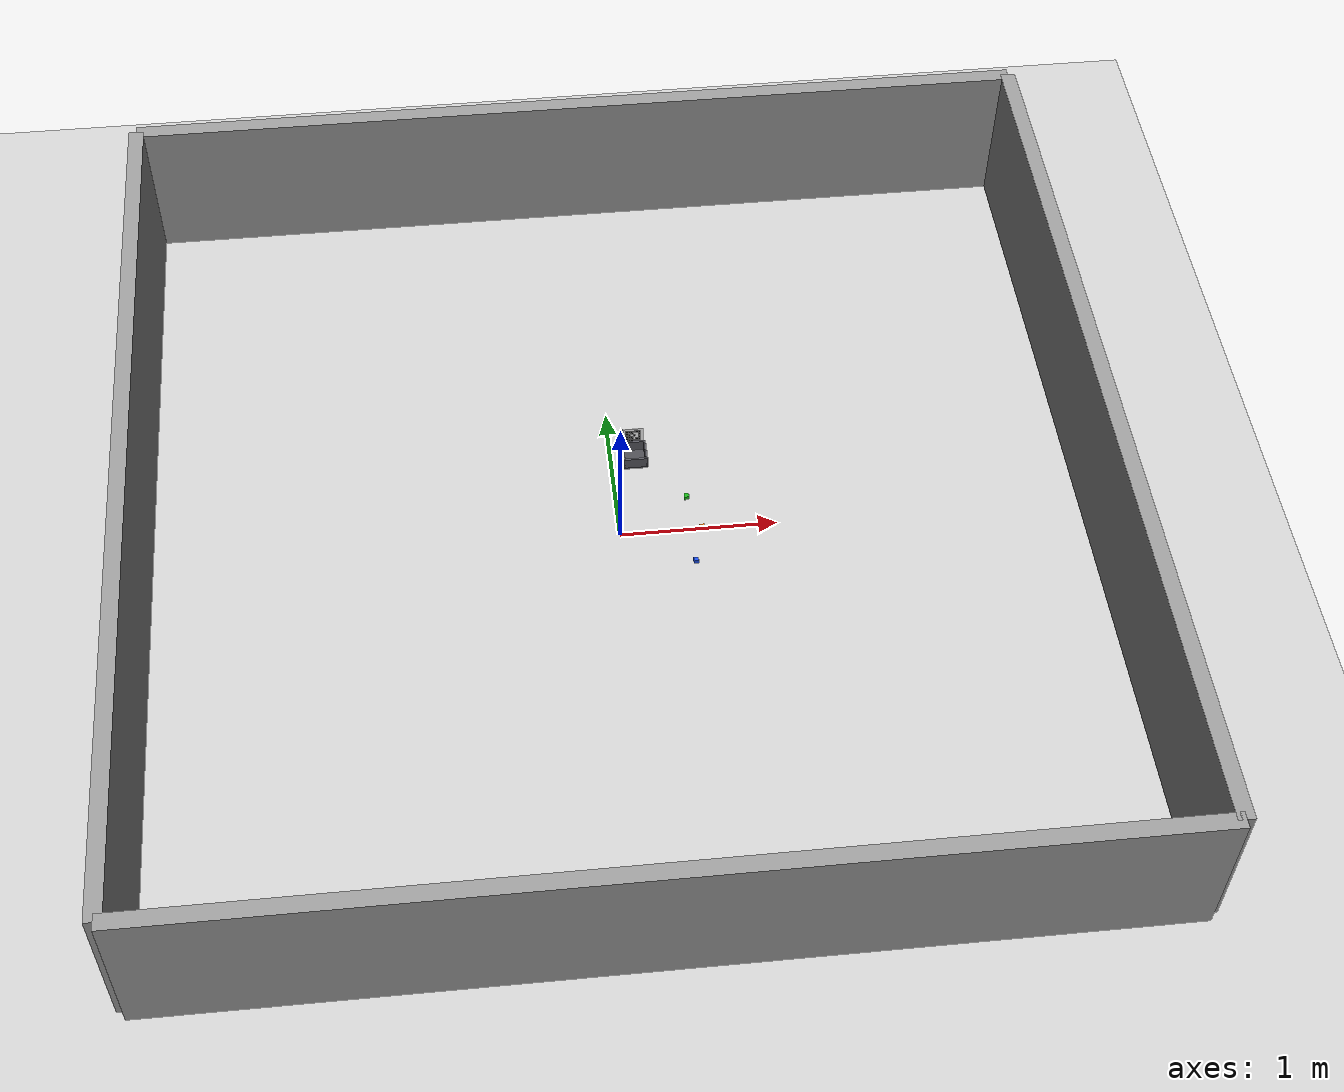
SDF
<?xml version="1.0" ?>
<sdf version="1.6">
  <world name="room">
    <physics name="1ms" type="ignored">
      <max_step_size>0.001</max_step_size>
      <real_time_factor>1.0</real_time_factor>
    </physics>

    <plugin filename="gz-sim-physics-system" name="gz::sim::systems::Physics">
    </plugin>
    <plugin filename="gz-sim-user-commands-system" name="gz::sim::systems::UserCommands">
    </plugin>
    <plugin filename="gz-sim-scene-broadcaster-system" name="gz::sim::systems::SceneBroadcaster">
    </plugin>
    <plugin filename="gz-sim-contact-system" name="gz::sim::systems::Contact">
    </plugin>
    <plugin filename="gz-sim-sensors-system" name="gz::sim::systems::Sensors">
      <render_engine>ogre2</render_engine>
    </plugin>
    <plugin filename="gz-sim-imu-system" name="gz::sim::systems::Imu">
    </plugin>

    <light type="directional" name="sun">
      <cast_shadows>true</cast_shadows>
      <pose>0 0 10 0 0 0</pose>
      <diffuse>0.8 0.8 0.8 1</diffuse>
      <specular>0.2 0.2 0.2 1</specular>
      <attenuation>
        <range>1000</range>
        <constant>0.9</constant>
        <linear>0.01</linear>
        <quadratic>0.001</quadratic>
      </attenuation>
      <direction>-0.5 0.1 -0.9</direction>
    </light>

    <model name="ground_plane">
      <static>true</static>
      <link name="link">
        <collision name="collision">
          <geometry>
            <plane>
              <normal>0 0 1</normal>
              <size>100 100</size>
            </plane>
          </geometry>
        </collision>
        <visual name="visual">
          <geometry>
            <plane>
              <normal>0 0 1</normal>
              <size>100 100</size>
            </plane>
          </geometry>
          <material>
            <ambient>0.8 0.8 0.8 1</ambient>
            <diffuse>0.8 0.8 0.8 1</diffuse>
            <specular>0.8 0.8 0.8 1</specular>
          </material>
        </visual>
      </link>
    </model>

    <!-- 6m x 6m rectangular room made of four walls, so the lidar has
         something in range to build a map from. -->
    <model name="wall_north">
      <static>true</static>
      <pose>0 3 0.5 0 0 0</pose>
      <link name="link">
        <collision name="collision">
          <geometry><box><size>6 0.1 1.0</size></box></geometry>
        </collision>
        <visual name="visual">
          <geometry><box><size>6 0.1 1.0</size></box></geometry>
          <material><ambient>0.6 0.6 0.6 1</ambient><diffuse>0.6 0.6 0.6 1</diffuse></material>
        </visual>
      </link>
    </model>

    <model name="wall_south">
      <static>true</static>
      <pose>0 -3 0.5 0 0 0</pose>
      <link name="link">
        <collision name="collision">
          <geometry><box><size>6 0.1 1.0</size></box></geometry>
        </collision>
        <visual name="visual">
          <geometry><box><size>6 0.1 1.0</size></box></geometry>
          <material><ambient>0.6 0.6 0.6 1</ambient><diffuse>0.6 0.6 0.6 1</diffuse></material>
        </visual>
      </link>
    </model>

    <model name="wall_east">
      <static>true</static>
      <pose>3 0 0.5 0 0 1.5708</pose>
      <link name="link">
        <collision name="collision">
          <geometry><box><size>6 0.1 1.0</size></box></geometry>
        </collision>
        <visual name="visual">
          <geometry><box><size>6 0.1 1.0</size></box></geometry>
          <material><ambient>0.6 0.6 0.6 1</ambient><diffuse>0.6 0.6 0.6 1</diffuse></material>
        </visual>
      </link>
    </model>

    <model name="wall_west">
      <static>true</static>
      <pose>-3 0 0.5 0 0 1.5708</pose>
      <link name="link">
        <collision name="collision">
          <geometry><box><size>6 0.1 1.0</size></box></geometry>
        </collision>
        <visual name="visual">
          <geometry><box><size>6 0.1 1.0</size></box></geometry>
          <material><ambient>0.6 0.6 0.6 1</ambient><diffuse>0.6 0.6 0.6 1</diffuse></material>
        </visual>
      </link>
    </model>

    <!-- A couple of obstacles in the middle so the map has interior features. -->

    <model name="pick_object_green">
      <pose>0.45 0.26 0.015 0 0 0</pose>
      <link name="link">
        <inertial>
          <mass>0.02</mass>
          <inertia><ixx>6e-6</ixx><ixy>0</ixy><ixz>0</ixz><iyy>6e-6</iyy><iyz>0</iyz><izz>6e-6</izz></inertia>
        </inertial>
        <collision name="collision">
          <geometry><box><size>0.03 0.03 0.03</size></box></geometry>
          <surface><friction><ode><mu>1.2</mu><mu2>1.2</mu2></ode></friction></surface>
        </collision>
        <visual name="visual">
          <geometry><box><size>0.03 0.03 0.03</size></box></geometry>
          <material><ambient>0.1 0.7 0.1 1</ambient><diffuse>0.1 0.7 0.1 1</diffuse></material>
        </visual>
      </link>
    </model>

    <model name="pick_object_blue">
      <pose>0.45 -0.26 0.015 0 0 0</pose>
      <link name="link">
        <inertial>
          <mass>0.02</mass>
          <inertia><ixx>6e-6</ixx><ixy>0</ixy><ixz>0</ixz><iyy>6e-6</iyy><iyz>0</iyz><izz>6e-6</izz></inertia>
        </inertial>
        <collision name="collision">
          <geometry><box><size>0.03 0.03 0.03</size></box></geometry>
          <surface><friction><ode><mu>1.2</mu><mu2>1.2</mu2></ode></friction></surface>
        </collision>
        <visual name="visual">
          <geometry><box><size>0.03 0.03 0.03</size></box></geometry>
          <material><ambient>0.1 0.3 0.9 1</ambient><diffuse>0.1 0.3 0.9 1</diffuse></material>
        </visual>
      </link>
    </model>

    <model name="pick_object_orange">
      <pose>0.52 0.00 0.015 0 0 0</pose>
      <link name="link">
        <inertial>
          <mass>0.02</mass>
          <inertia><ixx>6e-6</ixx><ixy>0</ixy><ixz>0</ixz><iyy>6e-6</iyy><iyz>0</iyz><izz>6e-6</izz></inertia>
        </inertial>
        <collision name="collision">
          <geometry><box><size>0.03 0.03 0.03</size></box></geometry>
          <surface><friction><ode><mu>1.2</mu><mu2>1.2</mu2></ode></friction></surface>
        </collision>
        <visual name="visual">
          <geometry><box><size>0.03 0.03 0.03</size></box></geometry>
          <material><ambient>0.95 0.5 0.1 1</ambient><diffuse>0.95 0.5 0.1 1</diffuse></material>
        </visual>
      </link>
    </model>

    <model name="trash_marker">
      <static>true</static>
      <pose>0.15 0.71 0.13 0 0 -1.570796</pose>
      <link name="link">
        <!-- 흰 바탕판(여백 포함). 마커 정면은 +x 방향이다. -->
        <collision name="plate_col"><geometry><box><size>0.004 0.13333 0.13333</size></box></geometry></collision>
        <visual name="plate_vis"><geometry><box><size>0.004 0.13333 0.13333</size></box></geometry>
          <material><ambient>1 1 1 1</ambient><diffuse>1 1 1 1</diffuse>
            <emissive>0.35 0.35 0.35 1</emissive></material></visual>
        <visual name="c0"><pose>0.00275 -0.04167 0.04167 0 0 0</pose><geometry><box><size>0.0015 0.01667 0.01667</size></box></geometry><material><ambient>0 0 0 1</ambient><diffuse>0 0 0 1</diffuse><specular>0 0 0 1</specular></material></visual>
        <visual name="c1"><pose>0.00275 -0.02500 0.04167 0 0 0</pose><geometry><box><size>0.0015 0.01667 0.01667</size></box></geometry><material><ambient>0 0 0 1</ambient><diffuse>0 0 0 1</diffuse><specular>0 0 0 1</specular></material></visual>
        <visual name="c2"><pose>0.00275 -0.00833 0.04167 0 0 0</pose><geometry><box><size>0.0015 0.01667 0.01667</size></box></geometry><material><ambient>0 0 0 1</ambient><diffuse>0 0 0 1</diffuse><specular>0 0 0 1</specular></material></visual>
        <visual name="c3"><pose>0.00275 0.00833 0.04167 0 0 0</pose><geometry><box><size>0.0015 0.01667 0.01667</size></box></geometry><material><ambient>0 0 0 1</ambient><diffuse>0 0 0 1</diffuse><specular>0 0 0 1</specular></material></visual>
        <visual name="c4"><pose>0.00275 0.02500 0.04167 0 0 0</pose><geometry><box><size>0.0015 0.01667 0.01667</size></box></geometry><material><ambient>0 0 0 1</ambient><diffuse>0 0 0 1</diffuse><specular>0 0 0 1</specular></material></visual>
        <visual name="c5"><pose>0.00275 0.04167 0.04167 0 0 0</pose><geometry><box><size>0.0015 0.01667 0.01667</size></box></geometry><material><ambient>0 0 0 1</ambient><diffuse>0 0 0 1</diffuse><specular>0 0 0 1</specular></material></visual>
        <visual name="c6"><pose>0.00275 -0.04167 0.02500 0 0 0</pose><geometry><box><size>0.0015 0.01667 0.01667</size></box></geometry><material><ambient>0 0 0 1</ambient><diffuse>0 0 0 1</diffuse><specular>0 0 0 1</specular></material></visual>
        <visual name="c7"><pose>0.00275 -0.00833 0.02500 0 0 0</pose><geometry><box><size>0.0015 0.01667 0.01667</size></box></geometry><material><ambient>0 0 0 1</ambient><diffuse>0 0 0 1</diffuse><specular>0 0 0 1</specular></material></visual>
        <visual name="c8"><pose>0.00275 0.04167 0.02500 0 0 0</pose><geometry><box><size>0.0015 0.01667 0.01667</size></box></geometry><material><ambient>0 0 0 1</ambient><diffuse>0 0 0 1</diffuse><specular>0 0 0 1</specular></material></visual>
        <visual name="c9"><pose>0.00275 -0.04167 0.00833 0 0 0</pose><geometry><box><size>0.0015 0.01667 0.01667</size></box></geometry><material><ambient>0 0 0 1</ambient><diffuse>0 0 0 1</diffuse><specular>0 0 0 1</specular></material></visual>
        <visual name="c10"><pose>0.00275 -0.02500 0.00833 0 0 0</pose><geometry><box><size>0.0015 0.01667 0.01667</size></box></geometry><material><ambient>0 0 0 1</ambient><diffuse>0 0 0 1</diffuse><specular>0 0 0 1</specular></material></visual>
        <visual name="c11"><pose>0.00275 0.00833 0.00833 0 0 0</pose><geometry><box><size>0.0015 0.01667 0.01667</size></box></geometry><material><ambient>0 0 0 1</ambient><diffuse>0 0 0 1</diffuse><specular>0 0 0 1</specular></material></visual>
        <visual name="c12"><pose>0.00275 0.04167 0.00833 0 0 0</pose><geometry><box><size>0.0015 0.01667 0.01667</size></box></geometry><material><ambient>0 0 0 1</ambient><diffuse>0 0 0 1</diffuse><specular>0 0 0 1</specular></material></visual>
        <visual name="c13"><pose>0.00275 -0.04167 -0.00833 0 0 0</pose><geometry><box><size>0.0015 0.01667 0.01667</size></box></geometry><material><ambient>0 0 0 1</ambient><diffuse>0 0 0 1</diffuse><specular>0 0 0 1</specular></material></visual>
        <visual name="c14"><pose>0.00275 -0.02500 -0.00833 0 0 0</pose><geometry><box><size>0.0015 0.01667 0.01667</size></box></geometry><material><ambient>0 0 0 1</ambient><diffuse>0 0 0 1</diffuse><specular>0 0 0 1</specular></material></visual>
        <visual name="c15"><pose>0.00275 -0.00833 -0.00833 0 0 0</pose><geometry><box><size>0.0015 0.01667 0.01667</size></box></geometry><material><ambient>0 0 0 1</ambient><diffuse>0 0 0 1</diffuse><specular>0 0 0 1</specular></material></visual>
        <visual name="c16"><pose>0.00275 0.04167 -0.00833 0 0 0</pose><geometry><box><size>0.0015 0.01667 0.01667</size></box></geometry><material><ambient>0 0 0 1</ambient><diffuse>0 0 0 1</diffuse><specular>0 0 0 1</specular></material></visual>
        <visual name="c17"><pose>0.00275 -0.04167 -0.02500 0 0 0</pose><geometry><box><size>0.0015 0.01667 0.01667</size></box></geometry><material><ambient>0 0 0 1</ambient><diffuse>0 0 0 1</diffuse><specular>0 0 0 1</specular></material></visual>
        <visual name="c18"><pose>0.00275 -0.02500 -0.02500 0 0 0</pose><geometry><box><size>0.0015 0.01667 0.01667</size></box></geometry><material><ambient>0 0 0 1</ambient><diffuse>0 0 0 1</diffuse><specular>0 0 0 1</specular></material></visual>
        <visual name="c19"><pose>0.00275 -0.00833 -0.02500 0 0 0</pose><geometry><box><size>0.0015 0.01667 0.01667</size></box></geometry><material><ambient>0 0 0 1</ambient><diffuse>0 0 0 1</diffuse><specular>0 0 0 1</specular></material></visual>
        <visual name="c20"><pose>0.00275 0.02500 -0.02500 0 0 0</pose><geometry><box><size>0.0015 0.01667 0.01667</size></box></geometry><material><ambient>0 0 0 1</ambient><diffuse>0 0 0 1</diffuse><specular>0 0 0 1</specular></material></visual>
        <visual name="c21"><pose>0.00275 0.04167 -0.02500 0 0 0</pose><geometry><box><size>0.0015 0.01667 0.01667</size></box></geometry><material><ambient>0 0 0 1</ambient><diffuse>0 0 0 1</diffuse><specular>0 0 0 1</specular></material></visual>
        <visual name="c22"><pose>0.00275 -0.04167 -0.04167 0 0 0</pose><geometry><box><size>0.0015 0.01667 0.01667</size></box></geometry><material><ambient>0 0 0 1</ambient><diffuse>0 0 0 1</diffuse><specular>0 0 0 1</specular></material></visual>
        <visual name="c23"><pose>0.00275 -0.02500 -0.04167 0 0 0</pose><geometry><box><size>0.0015 0.01667 0.01667</size></box></geometry><material><ambient>0 0 0 1</ambient><diffuse>0 0 0 1</diffuse><specular>0 0 0 1</specular></material></visual>
        <visual name="c24"><pose>0.00275 -0.00833 -0.04167 0 0 0</pose><geometry><box><size>0.0015 0.01667 0.01667</size></box></geometry><material><ambient>0 0 0 1</ambient><diffuse>0 0 0 1</diffuse><specular>0 0 0 1</specular></material></visual>
        <visual name="c25"><pose>0.00275 0.00833 -0.04167 0 0 0</pose><geometry><box><size>0.0015 0.01667 0.01667</size></box></geometry><material><ambient>0 0 0 1</ambient><diffuse>0 0 0 1</diffuse><specular>0 0 0 1</specular></material></visual>
        <visual name="c26"><pose>0.00275 0.02500 -0.04167 0 0 0</pose><geometry><box><size>0.0015 0.01667 0.01667</size></box></geometry><material><ambient>0 0 0 1</ambient><diffuse>0 0 0 1</diffuse><specular>0 0 0 1</specular></material></visual>
        <visual name="c27"><pose>0.00275 0.04167 -0.04167 0 0 0</pose><geometry><box><size>0.0015 0.01667 0.01667</size></box></geometry><material><ambient>0 0 0 1</ambient><diffuse>0 0 0 1</diffuse><specular>0 0 0 1</specular></material></visual>
      </link>
    </model>

    <model name="trash_can">
      <static>true</static>
      <pose>0.15 0.62 0 0 0 0</pose>
      <link name="link">
        <!-- 바닥판 -->
        <collision name="bottom_col"><pose>0 0 0.006 0 0 0</pose><geometry><box><size>0.16 0.16 0.012</size></box></geometry></collision>
        <visual name="bottom_vis"><pose>0 0 0.006 0 0 0</pose><geometry><box><size>0.16 0.16 0.012</size></box></geometry>
          <material><ambient>0.3 0.3 0.32 1</ambient><diffuse>0.3 0.3 0.32 1</diffuse></material></visual>
        <collision name="wall_px_col"><pose>0.074 0 0.045 0 0 0</pose><geometry><box><size>0.012 0.16 0.09</size></box></geometry></collision>
        <visual name="wall_px_vis"><pose>0.074 0 0.045 0 0 0</pose><geometry><box><size>0.012 0.16 0.09</size></box></geometry>
          <material><ambient>0.35 0.35 0.38 1</ambient><diffuse>0.35 0.35 0.38 1</diffuse></material></visual>
        <collision name="wall_nx_col"><pose>-0.074 0 0.045 0 0 0</pose><geometry><box><size>0.012 0.16 0.09</size></box></geometry></collision>
        <visual name="wall_nx_vis"><pose>-0.074 0 0.045 0 0 0</pose><geometry><box><size>0.012 0.16 0.09</size></box></geometry>
          <material><ambient>0.35 0.35 0.38 1</ambient><diffuse>0.35 0.35 0.38 1</diffuse></material></visual>
        <collision name="wall_py_col"><pose>0 0.074 0.045 0 0 0</pose><geometry><box><size>0.16 0.012 0.09</size></box></geometry></collision>
        <visual name="wall_py_vis"><pose>0 0.074 0.045 0 0 0</pose><geometry><box><size>0.16 0.012 0.09</size></box></geometry>
          <material><ambient>0.35 0.35 0.38 1</ambient><diffuse>0.35 0.35 0.38 1</diffuse></material></visual>
        <collision name="wall_ny_col"><pose>0 -0.074 0.045 0 0 0</pose><geometry><box><size>0.16 0.012 0.09</size></box></geometry></collision>
        <visual name="wall_ny_vis"><pose>0 -0.074 0.045 0 0 0</pose><geometry><box><size>0.16 0.012 0.09</size></box></geometry>
          <material><ambient>0.35 0.35 0.38 1</ambient><diffuse>0.35 0.35 0.38 1</diffuse></material></visual>
      </link>
    </model>
    <!-- LeRobot 시연(svla_so101_pickplace) 모사 관측 카메라 2대 — 프레임 대조로
         근사한 시점. 로봇 고정 베이스(0.3, 0, yaw 0) + 테이블(~0.65, 높이 0.18) 기준.
         up: 로봇 후상방에서 작업 영역 내려보기 / side: 전좌측 테이블 높이에서 로봇 조망 -->
  </world>
</sdf>
